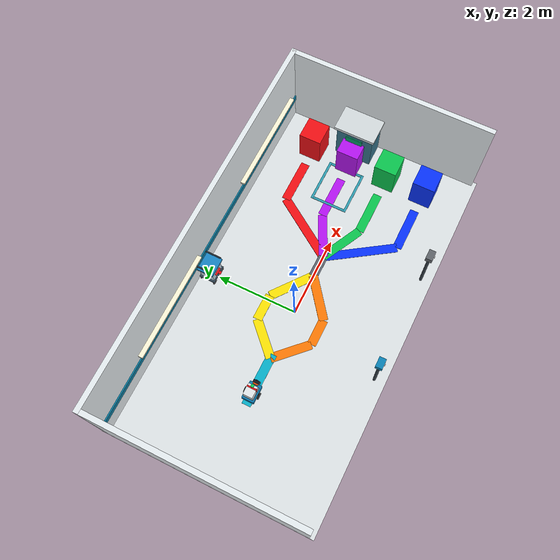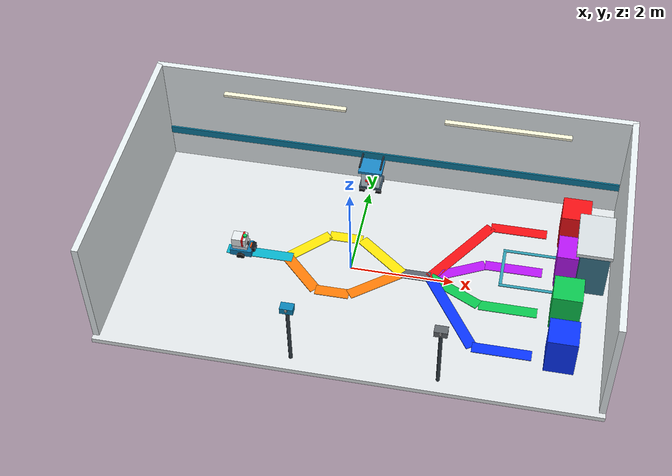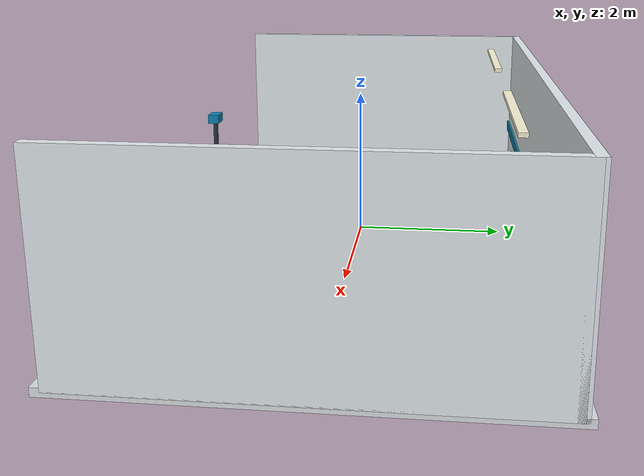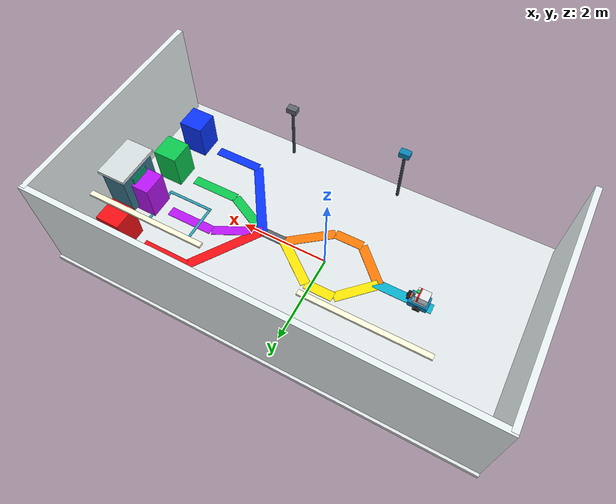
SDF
<?xml version="1.0"?>
<sdf version="1.9">
  <world name="flyto_atomic_color_route_lab">
    <physics name="default_physics" type="dart">
      <max_step_size>0.001</max_step_size>
      <real_time_factor>1.0</real_time_factor>
    </physics>
    <gravity>0 0 -9.80665</gravity>

    <plugin filename="gz-sim-physics-system"
            name="gz::sim::systems::Physics"/>
    <plugin filename="gz-sim-user-commands-system"
            name="gz::sim::systems::UserCommands"/>
    <plugin filename="gz-sim-scene-broadcaster-system"
            name="gz::sim::systems::SceneBroadcaster"/>
    <plugin filename="gz-sim-sensors-system"
            name="gz::sim::systems::Sensors">
      <render_engine>ogre2</render_engine>
    </plugin>

    <gui fullscreen="false">
      <plugin filename="MinimalScene" name="Flyto2 Gazebo 3D View">
        <gz-gui>
          <title>Flyto2 Gazebo 3D View</title>
          <property type="bool" key="showTitleBar">false</property>
          <property type="string" key="state">docked</property>
        </gz-gui>
        <engine>ogre2</engine>
        <scene>scene</scene>
        <ambient_light>0.58 0.61 0.64</ambient_light>
        <background_color>0.82 0.88 0.92</background_color>
        <camera_pose>0.45 -6.5 6.2 0 0.72 1.5708</camera_pose>
      </plugin>
      <plugin filename="GzSceneManager" name="Gazebo scene manager">
        <gz-gui>
          <property type="bool" key="resizable">false</property>
          <property type="double" key="width">5</property>
          <property type="double" key="height">5</property>
          <property type="bool" key="showTitleBar">false</property>
          <property type="string" key="state">floating</property>
        </gz-gui>
      </plugin>
      <plugin filename="WorldControl" name="Gazebo world control">
        <gz-gui>
          <title>Gazebo world control</title>
          <property type="bool" key="showTitleBar">false</property>
          <property type="bool" key="resizable">false</property>
          <property type="double" key="height">72</property>
          <property type="double" key="width">130</property>
          <property type="double" key="z">1</property>
          <property type="string" key="state">floating</property>
          <anchors target="Flyto2 Gazebo 3D View">
            <line own="left" target="left"/>
            <line own="bottom" target="bottom"/>
          </anchors>
        </gz-gui>
        <play_pause>true</play_pause>
        <step>true</step>
        <start_paused>false</start_paused>
      </plugin>
      <plugin filename="WorldStats" name="Gazebo world stats">
        <gz-gui>
          <title>Gazebo world stats</title>
          <property type="bool" key="showTitleBar">false</property>
          <property type="bool" key="resizable">false</property>
          <property type="double" key="height">110</property>
          <property type="double" key="width">290</property>
          <property type="double" key="z">1</property>
          <property type="string" key="state">floating</property>
          <anchors target="Flyto2 Gazebo 3D View">
            <line own="right" target="right"/>
            <line own="top" target="top"/>
          </anchors>
        </gz-gui>
        <sim_time>true</sim_time>
        <real_time>true</real_time>
        <real_time_factor>true</real_time_factor>
        <iterations>false</iterations>
      </plugin>
    </gui>

    <scene>
      <ambient>0.58 0.61 0.64 1</ambient>
      <background>0.82 0.88 0.92 1</background>
      <shadows>true</shadows>
      <grid>true</grid>
    </scene>
    <light name="route_light" type="directional">
      <cast_shadows>true</cast_shadows>
      <pose>0 0 8 0 0 0</pose>
      <diffuse>1 1 1 1</diffuse>
      <specular>0.2 0.2 0.2 1</specular>
      <direction>0.1 0.1 -1</direction>
    </light>

    <model name="hospital_floor">
      <static>true</static>
      <pose>0.35 0 0 0 0 0</pose>
      <link name="floor">
        <collision name="collision">
          <geometry><box><size>9.4 5.2 0.10</size></box></geometry>
        </collision>
        <visual name="visual">
          <geometry><box><size>9.4 5.2 0.10</size></box></geometry>
          <material>
            <ambient>0.73 0.75 0.76 1</ambient>
            <diffuse>0.88 0.90 0.91 1</diffuse>
          </material>
        </visual>
      </link>
    </model>

    <!-- Self-contained hospital context. These visuals never change route geometry. -->
    <model name="hospital_corridor_shell">
      <static>true</static>
      <link name="rear_wall">
        <pose>0.35 2.48 1.20 0 0 0</pose>
        <collision name="collision">
          <geometry><box><size>9.4 0.12 2.4</size></box></geometry>
        </collision>
        <visual name="visual">
          <geometry><box><size>9.4 0.12 2.4</size></box></geometry>
          <material>
            <ambient>0.72 0.78 0.80 1</ambient>
            <diffuse>0.91 0.94 0.95 1</diffuse>
          </material>
        </visual>
      </link>
      <link name="left_wall">
        <pose>-4.29 0 1.20 0 0 0</pose>
        <collision name="collision">
          <geometry><box><size>0.12 5.0 2.4</size></box></geometry>
        </collision>
        <visual name="visual">
          <geometry><box><size>0.12 5.0 2.4</size></box></geometry>
          <material><diffuse>0.91 0.94 0.95 1</diffuse></material>
        </visual>
      </link>
      <link name="right_wall">
        <pose>4.99 0 1.20 0 0 0</pose>
        <collision name="collision">
          <geometry><box><size>0.12 5.0 2.4</size></box></geometry>
        </collision>
        <visual name="visual">
          <geometry><box><size>0.12 5.0 2.4</size></box></geometry>
          <material><diffuse>0.91 0.94 0.95 1</diffuse></material>
        </visual>
      </link>
      <link name="wall_protection_strip">
        <pose>0.35 2.405 0.72 0 0 0</pose>
        <visual name="visual">
          <geometry><box><size>9.15 0.035 0.16</size></box></geometry>
          <material><diffuse>0.04 0.48 0.62 1</diffuse></material>
        </visual>
      </link>
      <link name="ceiling_light_left">
        <pose>-1.65 1.95 2.30 0 0 0</pose>
        <visual name="visual">
          <geometry><box><size>2.4 0.10 0.05</size></box></geometry>
          <material>
            <ambient>1 0.98 0.78 1</ambient>
            <diffuse>1 0.98 0.86 1</diffuse>
            <emissive>0.7 0.68 0.48 1</emissive>
          </material>
        </visual>
      </link>
      <link name="ceiling_light_right">
        <pose>2.65 1.95 2.30 0 0 0</pose>
        <visual name="visual">
          <geometry><box><size>2.4 0.10 0.05</size></box></geometry>
          <material>
            <ambient>1 0.98 0.78 1</ambient>
            <diffuse>1 0.98 0.86 1</diffuse>
            <emissive>0.7 0.68 0.48 1</emissive>
          </material>
        </visual>
      </link>
    </model>

    <model name="nurse_station">
      <static>true</static>
      <pose>4.55 0.50 0 0 0 0</pose>
      <link name="desk">
        <pose>0 0 0.72 0 0 0</pose>
        <collision name="collision">
          <geometry><box><size>0.55 0.92 1.05</size></box></geometry>
        </collision>
        <visual name="body">
          <geometry><box><size>0.55 0.92 1.05</size></box></geometry>
          <material><diffuse>0.22 0.46 0.55 1</diffuse></material>
        </visual>
        <visual name="countertop">
          <pose>-0.02 0 0.56 0 0 0</pose>
          <geometry><box><size>0.66 1.02 0.08</size></box></geometry>
          <material><diffuse>0.84 0.87 0.88 1</diffuse></material>
        </visual>
        <visual name="status_panel">
          <pose>-0.30 0 0.18 0 1.5708 0</pose>
          <geometry><box><size>0.34 0.42 0.025</size></box></geometry>
          <material>
            <diffuse>0.03 0.62 0.42 1</diffuse>
            <emissive>0.01 0.24 0.14 1</emissive>
          </material>
        </visual>
      </link>
    </model>

    <model name="camera_a_marker">
      <static>true</static>
      <pose>-0.65 -2.33 0 0 0 0</pose>
      <link name="marker">
        <visual name="pole">
          <pose>0 0 0.72 0 0 0</pose>
          <geometry><cylinder><radius>0.035</radius><length>1.44</length></cylinder></geometry>
          <material><diffuse>0.18 0.22 0.25 1</diffuse></material>
        </visual>
        <visual name="camera">
          <pose>0 0 1.47 0 0 0</pose>
          <geometry><box><size>0.24 0.16 0.13</size></box></geometry>
          <material><diffuse>0.04 0.52 0.72 1</diffuse></material>
        </visual>
        <visual name="healthy_light">
          <pose>0 -0.09 1.50 1.5708 0 0</pose>
          <geometry><cylinder><radius>0.025</radius><length>0.02</length></cylinder></geometry>
          <material><emissive>0.02 0.8 0.24 1</emissive></material>
        </visual>
      </link>
    </model>

    <model name="camera_b_marker">
      <static>true</static>
      <pose>2.05 -2.33 0 0 0 0</pose>
      <link name="marker">
        <visual name="pole">
          <pose>0 0 0.72 0 0 0</pose>
          <geometry><cylinder><radius>0.035</radius><length>1.44</length></cylinder></geometry>
          <material><diffuse>0.18 0.22 0.25 1</diffuse></material>
        </visual>
        <visual name="camera">
          <pose>0 0 1.47 0 0 0</pose>
          <geometry><box><size>0.24 0.16 0.13</size></box></geometry>
          <material><diffuse>0.38 0.40 0.42 1</diffuse></material>
        </visual>
        <visual name="failed_light">
          <pose>0 -0.09 1.50 1.5708 0 0</pose>
          <geometry><cylinder><radius>0.025</radius><length>0.02</length></cylinder></geometry>
          <material><emissive>0.9 0.03 0.03 1</emissive></material>
        </visual>
      </link>
    </model>

    <model name="medication_handoff_zone">
      <static>true</static>
      <pose>3.42 0.50 0.058 0 0 0</pose>
      <link name="zone">
        <visual name="front_border">
          <pose>0 -0.44 0 0 0 0</pose>
          <geometry><box><size>1.12 0.06 0.014</size></box></geometry>
          <material><diffuse>0.18 0.62 0.70 1</diffuse></material>
        </visual>
        <visual name="rear_border">
          <pose>0 0.44 0 0 0 0</pose>
          <geometry><box><size>1.12 0.06 0.014</size></box></geometry>
          <material><diffuse>0.18 0.62 0.70 1</diffuse></material>
        </visual>
        <visual name="left_border">
          <pose>-0.53 0 0 0 0 0</pose>
          <geometry><box><size>0.06 0.82 0.014</size></box></geometry>
          <material><diffuse>0.18 0.62 0.70 1</diffuse></material>
        </visual>
        <visual name="right_border">
          <pose>0.53 0 0 0 0 0</pose>
          <geometry><box><size>0.06 0.82 0.014</size></box></geometry>
          <material><diffuse>0.18 0.62 0.70 1</diffuse></material>
        </visual>
      </link>
    </model>

    <!-- Neutral trunk: the route decision begins at the first physical fork. -->
    <model name="route_trunk_before_first_fork">
      <static>true</static>
      <pose>-1.80 0 0.056 0 0 0</pose>
      <link name="line">
        <visual name="visual">
          <geometry><box><size>1.30 0.22 0.012</size></box></geometry>
          <material>
            <ambient>0.02 0.45 0.54 1</ambient>
            <diffuse>0.03 0.70 0.80 1</diffuse>
          </material>
        </visual>
      </link>
    </model>

    <!-- First fork: yellow or orange. -->
    <model name="first_fork_yellow_diagonal">
      <static>true</static>
      <pose>-0.90 0.35 0.056 0 0 0.7854</pose>
      <link name="line">
        <visual name="visual">
          <geometry><box><size>0.99 0.22 0.012</size></box></geometry>
          <material>
            <ambient>0.88 0.68 0.01 1</ambient>
            <diffuse>1.0 0.90 0.02 1</diffuse>
          </material>
        </visual>
      </link>
    </model>
    <model name="first_fork_yellow_lane">
      <static>true</static>
      <pose>-0.225 0.70 0.056 0 0 0</pose>
      <link name="line">
        <visual name="visual">
          <geometry><box><size>0.65 0.22 0.012</size></box></geometry>
          <material>
            <ambient>0.88 0.68 0.01 1</ambient>
            <diffuse>1.0 0.90 0.02 1</diffuse>
          </material>
        </visual>
      </link>
    </model>
    <model name="first_fork_yellow_merge">
      <static>true</static>
      <pose>0.55 0.35 0.056 0 0 -0.661</pose>
      <link name="line">
        <visual name="visual">
          <geometry><box><size>1.14 0.22 0.012</size></box></geometry>
          <material>
            <ambient>0.88 0.68 0.01 1</ambient>
            <diffuse>1.0 0.90 0.02 1</diffuse>
          </material>
        </visual>
      </link>
    </model>
    <model name="first_fork_orange_diagonal">
      <static>true</static>
      <pose>-0.90 -0.35 0.056 0 0 -0.7854</pose>
      <link name="line">
        <visual name="visual">
          <geometry><box><size>0.99 0.22 0.012</size></box></geometry>
          <material>
            <ambient>0.88 0.30 0.01 1</ambient>
            <diffuse>1.0 0.48 0.02 1</diffuse>
          </material>
        </visual>
      </link>
    </model>
    <model name="first_fork_orange_lane">
      <static>true</static>
      <pose>-0.225 -0.70 0.056 0 0 0</pose>
      <link name="line">
        <visual name="visual">
          <geometry><box><size>0.65 0.22 0.012</size></box></geometry>
          <material>
            <ambient>0.88 0.30 0.01 1</ambient>
            <diffuse>1.0 0.48 0.02 1</diffuse>
          </material>
        </visual>
      </link>
    </model>
    <model name="first_fork_orange_merge">
      <static>true</static>
      <pose>0.55 -0.35 0.056 0 0 0.661</pose>
      <link name="line">
        <visual name="visual">
          <geometry><box><size>1.14 0.22 0.012</size></box></geometry>
          <material>
            <ambient>0.88 0.30 0.01 1</ambient>
            <diffuse>1.0 0.48 0.02 1</diffuse>
          </material>
        </visual>
      </link>
    </model>

    <model name="route_merge_trunk">
      <static>true</static>
      <pose>1.275 0 0.056 0 0 0</pose>
      <link name="line">
        <visual name="visual">
          <geometry><box><size>0.55 0.22 0.012</size></box></geometry>
          <material>
            <ambient>0.22 0.24 0.27 1</ambient>
            <diffuse>0.36 0.39 0.43 1</diffuse>
          </material>
        </visual>
      </link>
    </model>

    <!-- Second fork fans into four executable branches. -->
    <model name="second_fork_blue_diagonal">
      <static>true</static>
      <pose>2.05 -0.75 0.056 0 0 -0.9828</pose>
      <link name="line">
        <visual name="visual">
          <geometry><box><size>1.803 0.22 0.012</size></box></geometry>
          <material>
            <ambient>0.02 0.12 0.82 1</ambient>
            <diffuse>0.03 0.20 1.0 1</diffuse>
          </material>
        </visual>
      </link>
    </model>
    <model name="second_fork_blue_lane">
      <static>true</static>
      <pose>3.10 -1.50 0.056 0 0 0</pose>
      <link name="line">
        <visual name="visual">
          <geometry><box><size>1.10 0.22 0.012</size></box></geometry>
          <material>
            <ambient>0.02 0.12 0.82 1</ambient>
            <diffuse>0.03 0.20 1.0 1</diffuse>
          </material>
        </visual>
      </link>
    </model>
    <model name="second_fork_green_diagonal">
      <static>true</static>
      <pose>2.05 -0.25 0.056 0 0 -0.4636</pose>
      <link name="line">
        <visual name="visual">
          <geometry><box><size>1.118 0.22 0.012</size></box></geometry>
          <material>
            <ambient>0.02 0.50 0.20 1</ambient>
            <diffuse>0.04 0.78 0.31 1</diffuse>
          </material>
        </visual>
      </link>
    </model>
    <model name="second_fork_green_lane">
      <static>true</static>
      <pose>3.10 -0.50 0.056 0 0 0</pose>
      <link name="line">
        <visual name="visual">
          <geometry><box><size>1.10 0.22 0.012</size></box></geometry>
          <material>
            <ambient>0.02 0.50 0.20 1</ambient>
            <diffuse>0.04 0.78 0.31 1</diffuse>
          </material>
        </visual>
      </link>
    </model>
    <model name="second_fork_purple_diagonal">
      <static>true</static>
      <pose>2.05 0.25 0.056 0 0 0.4636</pose>
      <link name="line">
        <visual name="visual">
          <geometry><box><size>1.118 0.22 0.012</size></box></geometry>
          <material>
            <ambient>0.46 0.04 0.68 1</ambient>
            <diffuse>0.72 0.08 0.96 1</diffuse>
          </material>
        </visual>
      </link>
    </model>
    <model name="second_fork_purple_lane">
      <static>true</static>
      <pose>3.10 0.50 0.056 0 0 0</pose>
      <link name="line">
        <visual name="visual">
          <geometry><box><size>1.10 0.22 0.012</size></box></geometry>
          <material>
            <ambient>0.46 0.04 0.68 1</ambient>
            <diffuse>0.72 0.08 0.96 1</diffuse>
          </material>
        </visual>
      </link>
    </model>
    <model name="second_fork_red_diagonal">
      <static>true</static>
      <pose>2.05 0.75 0.056 0 0 0.9828</pose>
      <link name="line">
        <visual name="visual">
          <geometry><box><size>1.803 0.22 0.012</size></box></geometry>
          <material>
            <ambient>0.72 0.03 0.04 1</ambient>
            <diffuse>0.96 0.06 0.08 1</diffuse>
          </material>
        </visual>
      </link>
    </model>
    <model name="second_fork_red_lane">
      <static>true</static>
      <pose>3.10 1.50 0.056 0 0 0</pose>
      <link name="line">
        <visual name="visual">
          <geometry><box><size>1.10 0.22 0.012</size></box></geometry>
          <material>
            <ambient>0.72 0.03 0.04 1</ambient>
            <diffuse>0.96 0.06 0.08 1</diffuse>
          </material>
        </visual>
      </link>
    </model>

    <model name="destination_counters">
      <static>true</static>
      <link name="blue">
        <pose>4.15 -1.50 0.45 0 0 0</pose>
        <collision name="collision">
          <geometry><box><size>0.55 0.55 0.9</size></box></geometry>
        </collision>
        <visual name="visual">
          <geometry><box><size>0.55 0.55 0.9</size></box></geometry>
          <material><diffuse>0.03 0.20 1.0 1</diffuse></material>
        </visual>
      </link>
      <link name="green">
        <pose>4.15 -0.50 0.45 0 0 0</pose>
        <collision name="collision">
          <geometry><box><size>0.55 0.55 0.9</size></box></geometry>
        </collision>
        <visual name="visual">
          <geometry><box><size>0.55 0.55 0.9</size></box></geometry>
          <material><diffuse>0.04 0.78 0.31 1</diffuse></material>
        </visual>
      </link>
      <link name="purple">
        <pose>4.15 0.50 0.45 0 0 0</pose>
        <collision name="collision">
          <geometry><box><size>0.55 0.55 0.9</size></box></geometry>
        </collision>
        <visual name="visual">
          <geometry><box><size>0.55 0.55 0.9</size></box></geometry>
          <material><diffuse>0.72 0.08 0.96 1</diffuse></material>
        </visual>
      </link>
      <link name="red">
        <pose>4.15 1.50 0.45 0 0 0</pose>
        <collision name="collision">
          <geometry><box><size>0.55 0.55 0.9</size></box></geometry>
        </collision>
        <visual name="visual">
          <geometry><box><size>0.55 0.55 0.9</size></box></geometry>
          <material><diffuse>0.96 0.06 0.08 1</diffuse></material>
        </visual>
      </link>
    </model>

    <model name="lab_obstacle">
      <static>false</static>
      <allow_auto_disable>false</allow_auto_disable>
      <pose>0 2.2 0.35 0 0 0</pose>
      <link name="obstacle">
        <inertial>
          <mass>25.0</mass>
          <inertia>
            <ixx>1.4242</ixx><iyy>1.4242</iyy><izz>0.8067</izz>
            <ixy>0</ixy><ixz>0</ixz><iyz>0</iyz>
          </inertia>
        </inertial>
        <collision name="collision">
          <geometry><box><size>0.44 0.44 0.70</size></box></geometry>
        </collision>
        <visual name="hospital_trolley_body">
          <pose>0 0 0.02 0 0 0</pose>
          <geometry><box><size>0.38 0.34 0.38</size></box></geometry>
          <material><diffuse>0.78 0.86 0.91 1</diffuse></material>
        </visual>
        <visual name="hospital_trolley_top_shelf">
          <pose>0 0 0.25 0 0 0</pose>
          <geometry><box><size>0.48 0.42 0.055</size></box></geometry>
          <material><diffuse>0.10 0.53 0.78 1</diffuse></material>
        </visual>
        <visual name="hospital_trolley_lower_shelf">
          <pose>0 0 -0.19 0 0 0</pose>
          <geometry><box><size>0.45 0.39 0.045</size></box></geometry>
          <material><diffuse>0.22 0.31 0.38 1</diffuse></material>
        </visual>
        <visual name="hospital_trolley_handle_left">
          <pose>-0.21 0 0.39 1.5708 0 0</pose>
          <geometry><cylinder><radius>0.018</radius><length>0.40</length></cylinder></geometry>
          <material><diffuse>0.15 0.20 0.24 1</diffuse></material>
        </visual>
        <visual name="hospital_trolley_handle_right">
          <pose>0.21 0 0.39 1.5708 0 0</pose>
          <geometry><cylinder><radius>0.018</radius><length>0.40</length></cylinder></geometry>
          <material><diffuse>0.15 0.20 0.24 1</diffuse></material>
        </visual>
        <visual name="hospital_trolley_cross_vertical">
          <pose>0 -0.173 0.02 1.5708 0 0</pose>
          <geometry><box><size>0.07 0.012 0.22</size></box></geometry>
          <material><diffuse>0.92 0.08 0.10 1</diffuse></material>
        </visual>
        <visual name="hospital_trolley_cross_horizontal">
          <pose>0 -0.18 0.02 1.5708 0 0</pose>
          <geometry><box><size>0.20 0.012 0.07</size></box></geometry>
          <material><diffuse>0.92 0.08 0.10 1</diffuse></material>
        </visual>
        <visual name="hospital_trolley_wheel_front_left">
          <pose>-0.17 -0.17 -0.29 1.5708 0 0</pose>
          <geometry><cylinder><radius>0.06</radius><length>0.045</length></cylinder></geometry>
          <material><diffuse>0.05 0.05 0.06 1</diffuse></material>
        </visual>
        <visual name="hospital_trolley_wheel_front_right">
          <pose>0.17 -0.17 -0.29 1.5708 0 0</pose>
          <geometry><cylinder><radius>0.06</radius><length>0.045</length></cylinder></geometry>
          <material><diffuse>0.05 0.05 0.06 1</diffuse></material>
        </visual>
        <visual name="hospital_trolley_wheel_rear_left">
          <pose>-0.17 0.17 -0.29 1.5708 0 0</pose>
          <geometry><cylinder><radius>0.06</radius><length>0.045</length></cylinder></geometry>
          <material><diffuse>0.05 0.05 0.06 1</diffuse></material>
        </visual>
        <visual name="hospital_trolley_wheel_rear_right">
          <pose>0.17 0.17 -0.29 1.5708 0 0</pose>
          <geometry><cylinder><radius>0.06</radius><length>0.045</length></cylinder></geometry>
          <material><diffuse>0.05 0.05 0.06 1</diffuse></material>
        </visual>
      </link>
    </model>

    <model name="lab_evidence_camera">
      <static>true</static>
      <pose>0.45 0 7.8 0 1.5708 0</pose>
      <link name="camera_link">
        <sensor name="overhead_camera" type="camera">
          <topic>/flyto/evidence/overhead</topic>
          <update_rate>8</update_rate>
          <always_on>true</always_on>
          <visualize>false</visualize>
          <camera>
            <horizontal_fov>1.22</horizontal_fov>
            <image>
              <width>1280</width><height>720</height><format>R8G8B8</format>
            </image>
            <clip><near>0.1</near><far>20.0</far></clip>
          </camera>
        </sensor>
      </link>
    </model>
    <model name="corridor_camera_a">
      <static>true</static>
      <pose>-0.65 -2.15 2.75 0 1.10 1.5708</pose>
      <link name="camera_link">
        <sensor name="zone_a_camera" type="camera">
          <topic>/flyto/evidence/zone_a</topic>
          <update_rate>8</update_rate>
          <always_on>true</always_on>
          <visualize>false</visualize>
          <camera>
            <horizontal_fov>1.50</horizontal_fov>
            <image>
              <width>960</width><height>540</height><format>R8G8B8</format>
            </image>
            <clip><near>0.1</near><far>12.0</far></clip>
          </camera>
        </sensor>
      </link>
    </model>
    <model name="corridor_camera_b">
      <static>true</static>
      <pose>2.05 -2.15 2.75 0 1.10 1.5708</pose>
      <link name="camera_link">
        <sensor name="zone_b_camera" type="camera">
          <topic>/flyto/evidence/zone_b</topic>
          <update_rate>8</update_rate>
          <always_on>true</always_on>
          <visualize>false</visualize>
          <camera>
            <horizontal_fov>1.50</horizontal_fov>
            <image>
              <width>960</width><height>540</height><format>R8G8B8</format>
            </image>
            <clip><near>0.1</near><far>12.0</far></clip>
          </camera>
        </sensor>
      </link>
    </model>

    <include>
      <uri>model://flyto_rover</uri>
      <name>flyto_rover</name>
      <pose>-2.15 0 0 0 0 0</pose>
    </include>
  </world>
</sdf>

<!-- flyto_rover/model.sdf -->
<sdf version="1.9">
  <model name="flyto_rover">
    <static>false</static>
    <self_collide>false</self_collide>

    <link name="base_link">
      <pose>0 0 0.14 0 0 0</pose>
      <inertial>
        <mass>8.0</mass>
        <inertia>
          <ixx>0.075</ixx>
          <iyy>0.135</iyy>
          <izz>0.195</izz>
          <ixy>0</ixy>
          <ixz>0</ixz>
          <iyz>0</iyz>
        </inertia>
      </inertial>
      <collision name="base_collision">
        <geometry>
          <box>
            <size>0.42 0.30 0.14</size>
          </box>
        </geometry>
      </collision>
      <visual name="base_visual">
        <geometry>
          <box>
            <size>0.42 0.30 0.14</size>
          </box>
        </geometry>
        <material>
          <ambient>0.04 0.28 0.42 1</ambient>
          <diffuse>0.04 0.48 0.70 1</diffuse>
          <specular>0.2 0.2 0.2 1</specular>
        </material>
      </visual>
      <visual name="payload_tray">
        <pose>-0.02 0 0.12 0 0 0</pose>
        <geometry>
          <box>
            <size>0.30 0.24 0.08</size>
          </box>
        </geometry>
        <material>
          <ambient>0.65 0.68 0.72 1</ambient>
          <diffuse>0.82 0.85 0.88 1</diffuse>
        </material>
      </visual>
      <visual name="locked_medication_container">
        <pose>-0.035 0 0.245 0 0 0</pose>
        <geometry>
          <box>
            <size>0.28 0.23 0.18</size>
          </box>
        </geometry>
        <material>
          <ambient>0.70 0.72 0.74 1</ambient>
          <diffuse>0.90 0.92 0.93 1</diffuse>
          <specular>0.35 0.35 0.35 1</specular>
        </material>
      </visual>
      <visual name="container_lock_band">
        <pose>0.035 0 0.245 0 0 0</pose>
        <geometry>
          <box>
            <size>0.035 0.238 0.19</size>
          </box>
        </geometry>
        <material>
          <ambient>0.65 0.03 0.04 1</ambient>
          <diffuse>0.92 0.05 0.06 1</diffuse>
        </material>
      </visual>
      <visual name="status_light">
        <pose>0.075 0 0.357 0 0 0</pose>
        <geometry>
          <cylinder>
            <radius>0.038</radius>
            <length>0.035</length>
          </cylinder>
        </geometry>
        <material>
          <ambient>0.02 0.58 0.24 1</ambient>
          <diffuse>0.03 0.82 0.34 1</diffuse>
          <emissive>0.01 0.36 0.12 1</emissive>
        </material>
      </visual>
      <visual name="camera_housing">
        <pose>0.235 0 0.075 0 0 0</pose>
        <geometry>
          <box>
            <size>0.07 0.16 0.105</size>
          </box>
        </geometry>
        <material>
          <ambient>0.025 0.035 0.045 1</ambient>
          <diffuse>0.06 0.08 0.10 1</diffuse>
          <specular>0.55 0.55 0.55 1</specular>
        </material>
      </visual>
      <visual name="camera_lens">
        <pose>0.273 0 0.075 0 1.5708 0</pose>
        <geometry>
          <cylinder>
            <radius>0.042</radius>
            <length>0.018</length>
          </cylinder>
        </geometry>
        <material>
          <ambient>0.01 0.03 0.07 1</ambient>
          <diffuse>0.02 0.08 0.18 1</diffuse>
          <specular>0.8 0.8 0.8 1</specular>
        </material>
      </visual>
      <visual name="direction_marker">
        <pose>0.19 0 0.105 0 0 0</pose>
        <geometry>
          <box>
            <size>0.04 0.12 0.04</size>
          </box>
        </geometry>
        <material>
          <ambient>0.9 0.25 0.05 1</ambient>
          <diffuse>1 0.35 0.05 1</diffuse>
        </material>
      </visual>
    </link>

    <link name="left_wheel">
      <pose>0 0.17 0.08 1.5708 0 0</pose>
      <inertial>
        <mass>0.6</mass>
        <inertia>
          <ixx>0.002</ixx>
          <iyy>0.002</iyy>
          <izz>0.001</izz>
          <ixy>0</ixy>
          <ixz>0</ixz>
          <iyz>0</iyz>
        </inertia>
      </inertial>
      <collision name="collision">
        <geometry>
          <cylinder>
            <radius>0.08</radius>
            <length>0.04</length>
          </cylinder>
        </geometry>
        <surface>
          <friction>
            <ode>
              <mu>1.0</mu>
              <mu2>1.0</mu2>
            </ode>
          </friction>
        </surface>
      </collision>
      <visual name="visual">
        <geometry>
          <cylinder>
            <radius>0.08</radius>
            <length>0.04</length>
          </cylinder>
        </geometry>
        <material>
          <ambient>0.03 0.03 0.03 1</ambient>
          <diffuse>0.08 0.08 0.08 1</diffuse>
        </material>
      </visual>
    </link>

    <link name="right_wheel">
      <pose>0 -0.17 0.08 1.5708 0 0</pose>
      <inertial>
        <mass>0.6</mass>
        <inertia>
          <ixx>0.002</ixx>
          <iyy>0.002</iyy>
          <izz>0.001</izz>
          <ixy>0</ixy>
          <ixz>0</ixz>
          <iyz>0</iyz>
        </inertia>
      </inertial>
      <collision name="collision">
        <geometry>
          <cylinder>
            <radius>0.08</radius>
            <length>0.04</length>
          </cylinder>
        </geometry>
        <surface>
          <friction>
            <ode>
              <mu>1.0</mu>
              <mu2>1.0</mu2>
            </ode>
          </friction>
        </surface>
      </collision>
      <visual name="visual">
        <geometry>
          <cylinder>
            <radius>0.08</radius>
            <length>0.04</length>
          </cylinder>
        </geometry>
        <material>
          <ambient>0.03 0.03 0.03 1</ambient>
          <diffuse>0.08 0.08 0.08 1</diffuse>
        </material>
      </visual>
    </link>

    <link name="rear_caster">
      <pose>-0.15 0 0.045 0 0 0</pose>
      <inertial>
        <mass>0.15</mass>
        <inertia>
          <ixx>0.0001</ixx>
          <iyy>0.0001</iyy>
          <izz>0.0001</izz>
          <ixy>0</ixy>
          <ixz>0</ixz>
          <iyz>0</iyz>
        </inertia>
      </inertial>
      <collision name="collision">
        <geometry>
          <sphere>
            <radius>0.045</radius>
          </sphere>
        </geometry>
        <surface>
          <friction>
            <ode>
              <mu>0.05</mu>
              <mu2>0.05</mu2>
            </ode>
          </friction>
        </surface>
      </collision>
      <visual name="visual">
        <geometry>
          <sphere>
            <radius>0.045</radius>
          </sphere>
        </geometry>
        <material>
          <ambient>0.12 0.12 0.12 1</ambient>
          <diffuse>0.2 0.2 0.2 1</diffuse>
        </material>
      </visual>
    </link>

    <link name="lidar_link">
      <pose>0.10 0 0.285 0 0 0</pose>
      <inertial>
        <mass>0.2</mass>
        <inertia>
          <ixx>0.0002</ixx>
          <iyy>0.0002</iyy>
          <izz>0.0002</izz>
          <ixy>0</ixy>
          <ixz>0</ixz>
          <iyz>0</iyz>
        </inertia>
      </inertial>
      <visual name="visual">
        <geometry>
          <cylinder>
            <radius>0.045</radius>
            <length>0.035</length>
          </cylinder>
        </geometry>
        <material>
          <ambient>0.08 0.08 0.08 1</ambient>
          <diffuse>0.16 0.16 0.16 1</diffuse>
        </material>
      </visual>
      <sensor name="front_lidar" type="gpu_lidar">
        <topic>/flyto/scan</topic>
        <gz_frame_id>lidar_link</gz_frame_id>
        <update_rate>10</update_rate>
        <always_on>true</always_on>
        <visualize>true</visualize>
        <lidar>
          <scan>
            <horizontal>
              <samples>360</samples>
              <resolution>1</resolution>
              <min_angle>-3.14159</min_angle>
              <max_angle>3.14159</max_angle>
            </horizontal>
          </scan>
          <range>
            <min>0.12</min>
            <max>8.0</max>
            <resolution>0.01</resolution>
          </range>
        </lidar>
      </sensor>
    </link>

    <link name="route_camera_link">
      <pose>0.32 0 0.30 0 1.5708 0</pose>
      <inertial>
        <mass>0.08</mass>
        <inertia>
          <ixx>0.00008</ixx>
          <iyy>0.00008</iyy>
          <izz>0.00008</izz>
          <ixy>0</ixy>
          <ixz>0</ixz>
          <iyz>0</iyz>
        </inertia>
      </inertial>
      <sensor name="route_camera" type="camera">
        <topic>/flyto/camera/image</topic>
        <update_rate>15</update_rate>
        <!-- The Nav2 lab does not consume video. Keep the optional camera
             demand-driven so it cannot starve safety-critical sensors. -->
        <always_on>false</always_on>
        <visualize>false</visualize>
        <camera>
          <horizontal_fov>1.20</horizontal_fov>
          <image>
            <width>160</width>
            <height>120</height>
            <format>R8G8B8</format>
          </image>
          <clip>
            <near>0.05</near>
            <far>1.0</far>
          </clip>
        </camera>
      </sensor>
    </link>

    <joint name="left_wheel_joint" type="revolute">
      <parent>base_link</parent>
      <child>left_wheel</child>
      <axis>
        <xyz expressed_in="__model__">0 1 0</xyz>
      </axis>
    </joint>
    <joint name="right_wheel_joint" type="revolute">
      <parent>base_link</parent>
      <child>right_wheel</child>
      <axis>
        <xyz expressed_in="__model__">0 1 0</xyz>
      </axis>
    </joint>
    <joint name="rear_caster_joint" type="ball">
      <parent>base_link</parent>
      <child>rear_caster</child>
    </joint>
    <joint name="lidar_joint" type="fixed">
      <parent>base_link</parent>
      <child>lidar_link</child>
    </joint>
    <joint name="route_camera_joint" type="fixed">
      <parent>base_link</parent>
      <child>route_camera_link</child>
    </joint>

    <plugin filename="gz-sim-diff-drive-system"
            name="gz::sim::systems::DiffDrive">
      <left_joint>left_wheel_joint</left_joint>
      <right_joint>right_wheel_joint</right_joint>
      <wheel_separation>0.34</wheel_separation>
      <wheel_radius>0.08</wheel_radius>
      <topic>/flyto/cmd_vel</topic>
      <odom_topic>/flyto/odom</odom_topic>
      <tf_topic>/flyto/tf</tf_topic>
      <frame_id>odom</frame_id>
      <child_frame_id>base_link</child_frame_id>
      <odom_publish_frequency>30</odom_publish_frequency>
    </plugin>
    <plugin filename="gz-sim-odometry-publisher-system"
            name="gz::sim::systems::OdometryPublisher">
      <odom_frame>world</odom_frame>
      <robot_base_frame>flyto_rover</robot_base_frame>
      <odom_topic>/flyto/ground_truth</odom_topic>
      <odom_publish_frequency>30</odom_publish_frequency>
      <dimensions>3</dimensions>
    </plugin>
  </model>
</sdf>
